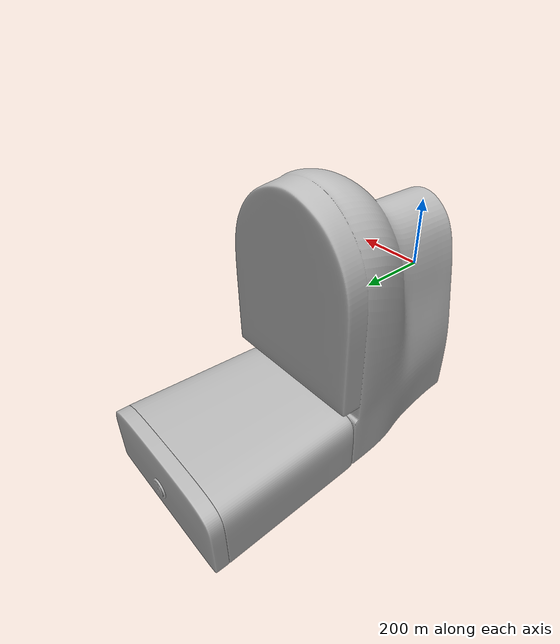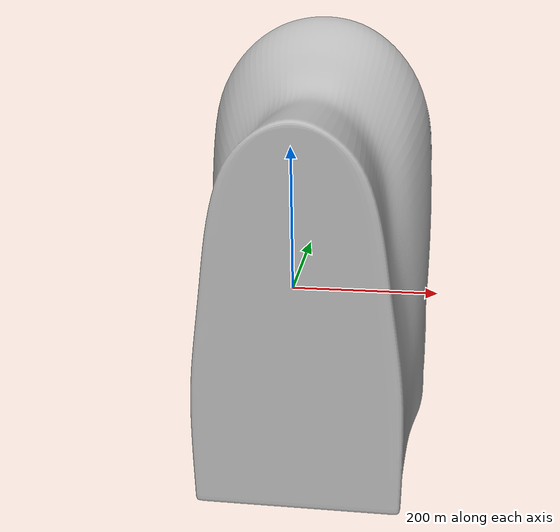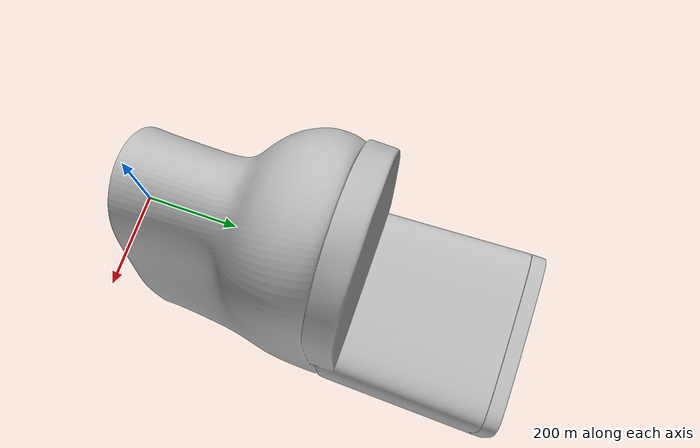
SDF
<?xml version="1.0"?>

<sdf version="1.6">
  <model name='Toilet'>
    <link name="body">
      <pose>0 0 0 0 0 0</pose>

      <visual name="visual">
        <geometry>
          <mesh>
            <uri>model://Toilet/meshes/toilet.obj</uri>
            <scale>10.75 10.75 10.75</scale>
          </mesh>
        </geometry>
      </visual>

      <collision name="collision">
        <geometry>
          <mesh>
            <uri>model://Toilet/meshes/toilet.obj</uri>
            <scale>10.75 10.75 10.75</scale>
          </mesh>
        </geometry>
      </collision>

    </link>
  </model>
</sdf>
